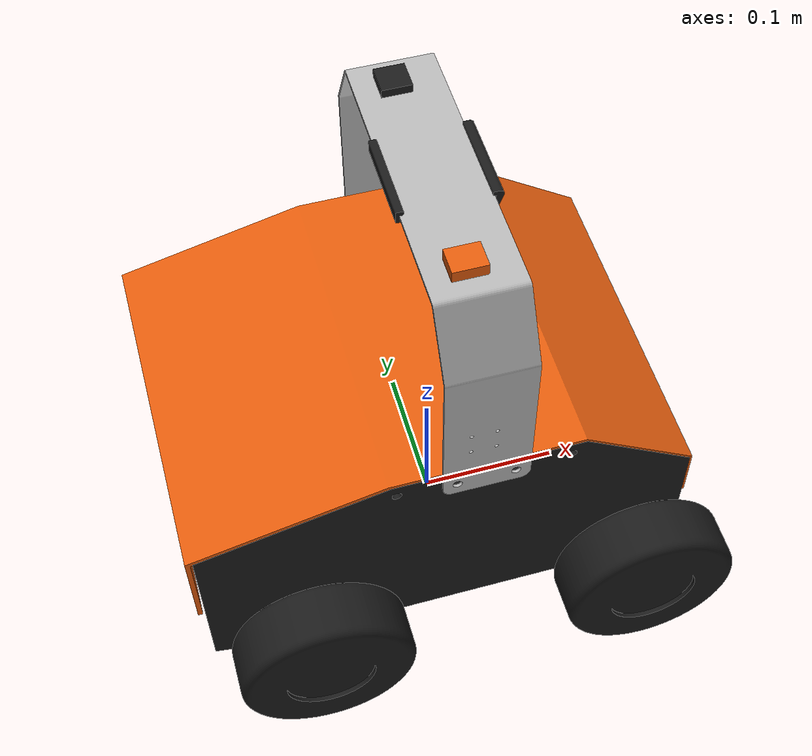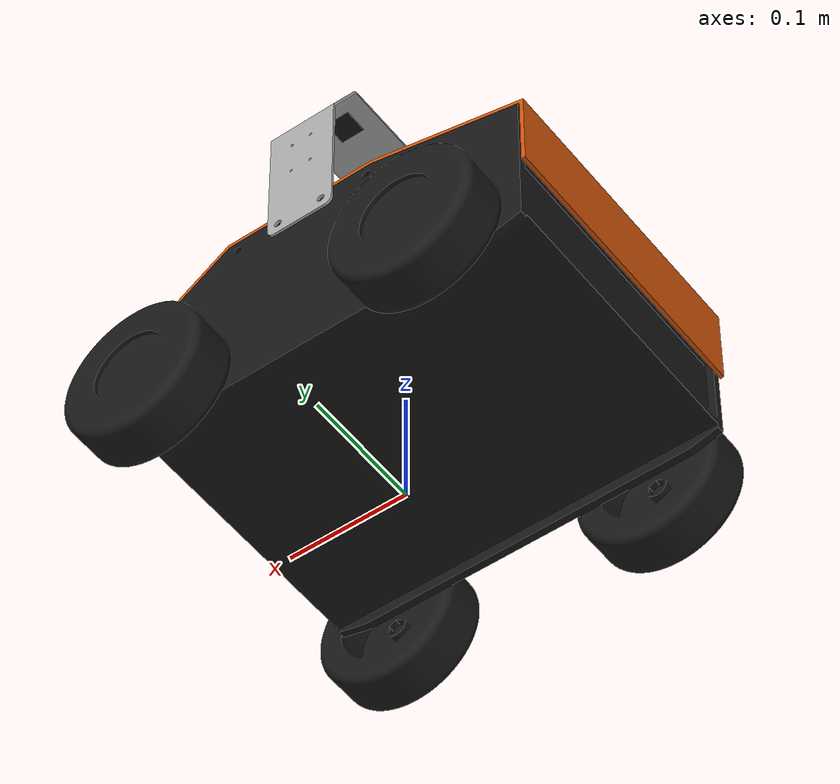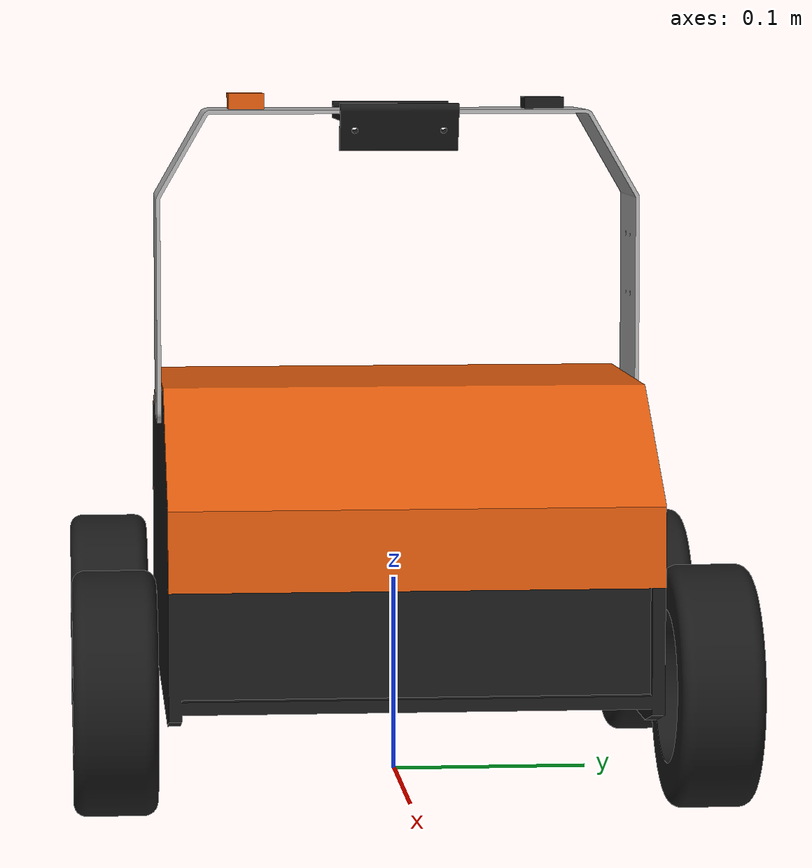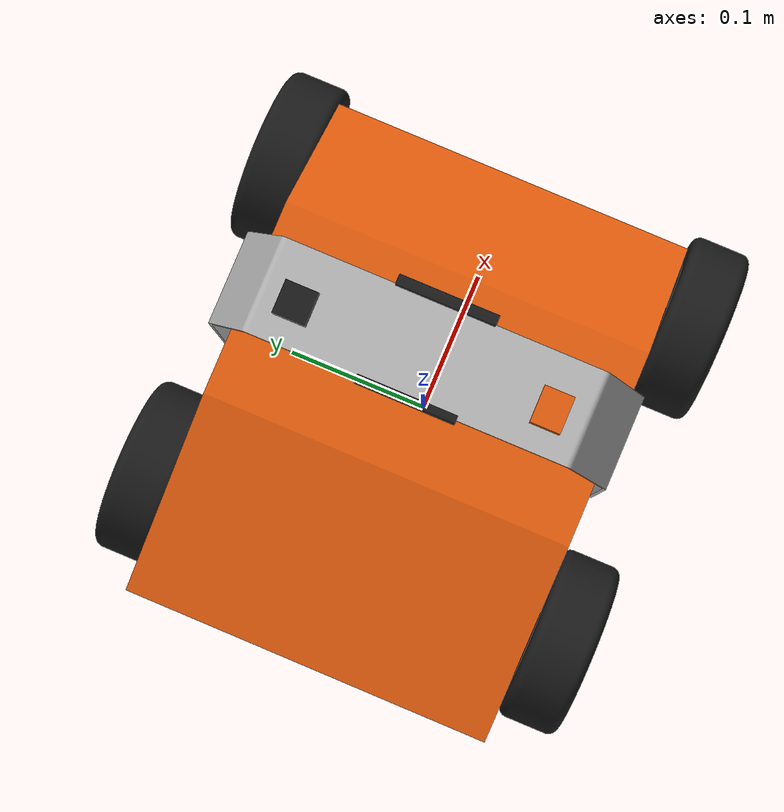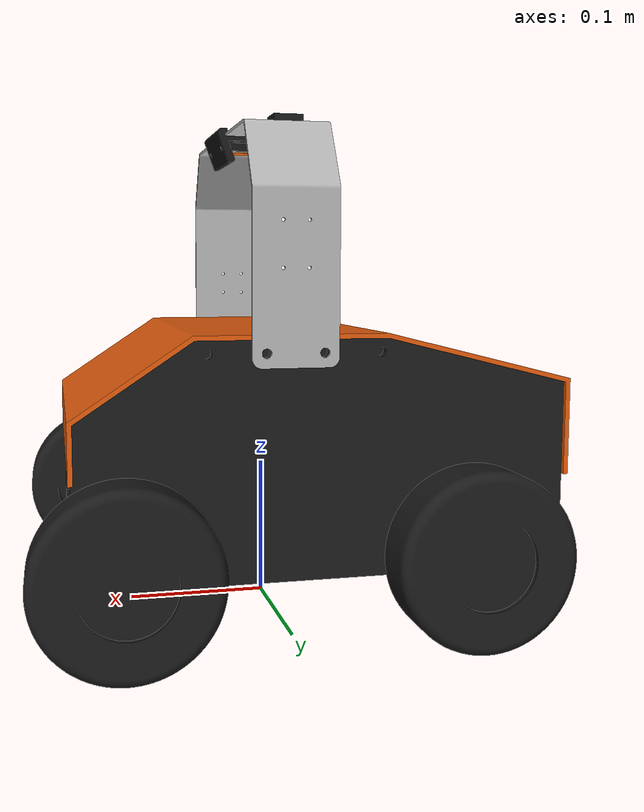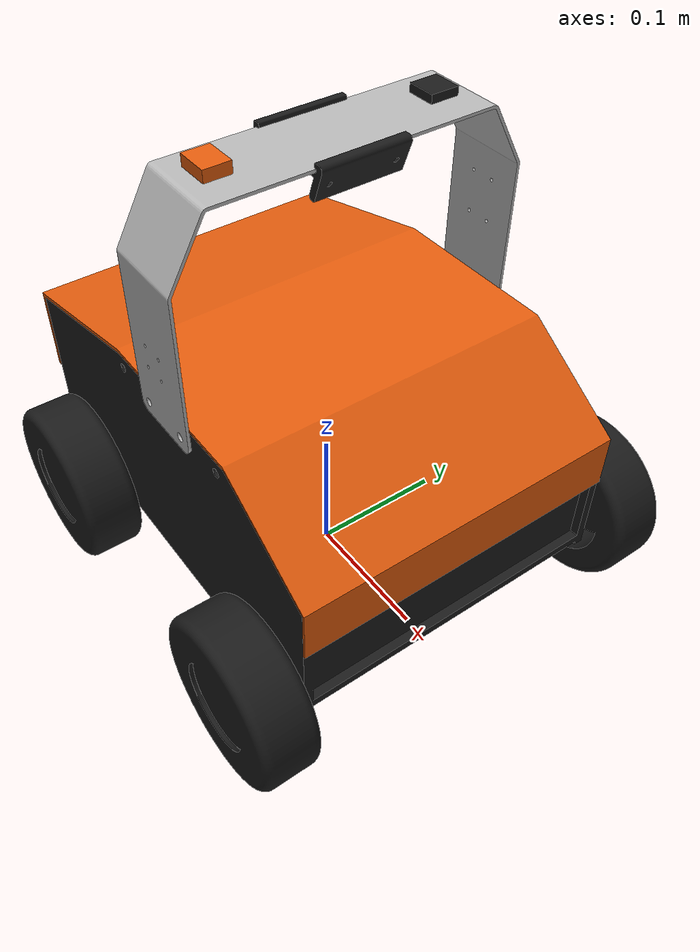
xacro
<?xml version="1.0"?>
<robot xmlns:xacro="http://www.ros.org/wiki/xacro" name="robomagellan">

  <material name="black">
    <color rgba="0.1 0.1 0.1 1.0" />
  </material>

  <material name="grey">
    <color rgba="0.7 0.7 0.7 1.0" />
  </material>

  <material name="orange">
    <color rgba="0.8745 0.3529 0.04705 1.0" />
  </material>

  <link name="base_link">
    <visual>
      <geometry>
        <mesh filename="package://robomagellan/meshes/base_link.stl" scale="0.001 0.001 0.001" />
      </geometry>
      <material name="black" />
      <origin xyz="0.1043 -0.12065 0.059944" rpy="1.57 0 3.14" />
    </visual>
  </link>

  <xacro:macro name="wheel" params="name left front">
    <joint name="${name}_wheel_joint" type="continuous">
      <origin xyz="${front * 0.1143} ${left * 0.14615} 0.059944" rpy="0 0 0" />
      <parent link="base_link" />
      <child link="${name}_wheel_link" />
      <axis xyz="0 1 0" />
    </joint>
    <link name="${name}_wheel_link">
      <visual>
        <geometry>
          <mesh filename="package://robomagellan/meshes/wheel.stl" scale="0.001 0.001 0.001" />
        </geometry>
        <material name="black" />
        <origin xyz="0 ${left * 0.0205} 0" rpy="${left * 1.57} 0 0" />
      </visual>
    </link>
  </xacro:macro>

  <xacro:wheel name="lf" left="1" front="1" />
  <xacro:wheel name="lr" left="1" front="-1" />
  <xacro:wheel name="rf" left="-1" front="1" />
  <xacro:wheel name="rr" left="-1" front="-1" />

  <joint name="cover_joint" type="fixed">
    <origin xyz="-0 0 0.1575" rpy="0 0 0" />
    <parent link="base_link" />
    <child link="cover_link" />
  </joint>
  <link name="cover_link">
    <visual>
      <geometry>
        <mesh filename="package://robomagellan/meshes/cover.stl" scale="0.001 0.001 0.001" />
      </geometry>
      <material name="orange" />
      <origin xyz="0.1106 -0.12065 0.0" rpy="1.57 0 3.14" />
    </visual>
  </link>

  <joint name="hoop_joint" type="fixed">
    <origin xyz="0 0 0.34" rpy="0 0 0" />
    <parent link="base_link" />
    <child link="hoop_link" />
  </joint>
  <link name="hoop_link">
    <visual>
      <geometry>
        <mesh filename="package://robomagellan/meshes/hoop.stl" scale="0.001 0.001 0.001" />
      </geometry>
      <material name="grey" />
      <origin xyz="0.032 0.12065 -0.156" rpy="1.57 0 3.14" />
    </visual>
  </link>

  <joint name="camera_mount_joint" type="fixed">
    <origin xyz="0 0 0.34" rpy="0 0 0" />
    <parent link="base_link" />
    <child link="camera_mount" />
  </joint>
  <link name="camera_mount">
    <visual>
      <geometry>
        <mesh filename="package://robomagellan/meshes/camera_mount.stl" scale="0.001 0.001 0.001" />
      </geometry>
      <material name="black" />
      <origin xyz="0.0325 -0.03 0" rpy="0 1.57 1.57" />
    </visual>
  </link>

  <joint name="imu_joint" type="fixed">
    <origin xyz="0 0.0762 0.004" rpy="3.14 0.0 0.0" />
    <parent link="hoop_link" />
    <child link="imu_link" />
  </joint>
  <link name="imu_link">
    <visual>
      <geometry>
        <box size="0.02 0.02 0.008" />
      </geometry>
      <material name="black" />
    </visual>
  </link>

  <joint name="gps_joint" type="fixed">
    <origin xyz="0 -0.0762 0.005" rpy="0 0 0" />
    <parent link="hoop_link" />
    <child link="gps_link" />
  </joint>
  <link name="gps_link">
    <visual>
      <geometry>
        <box size="0.022 0.018 0.01" />
      </geometry>
      <material name="orange" />
    </visual>
  </link>

</robot>
